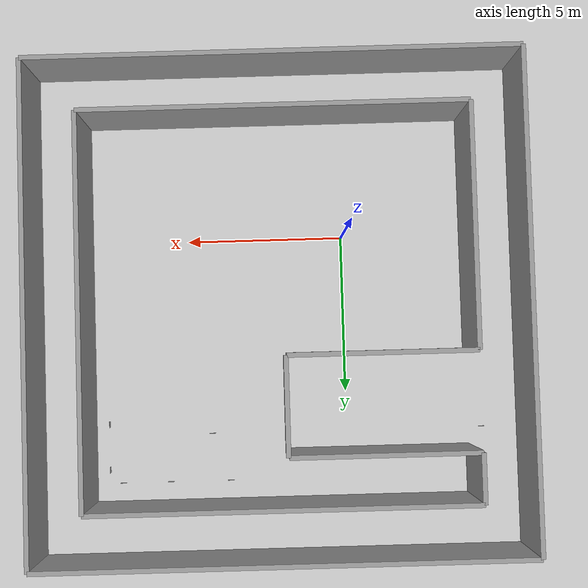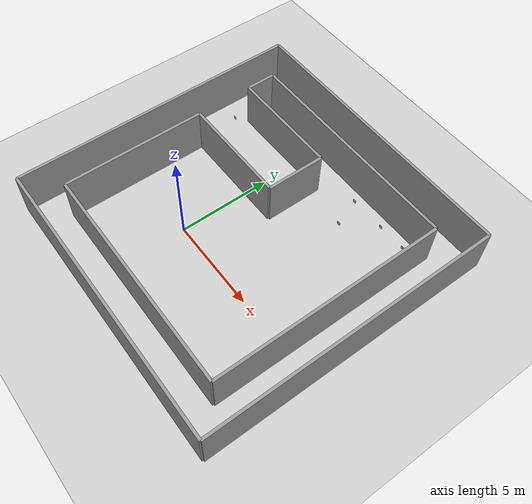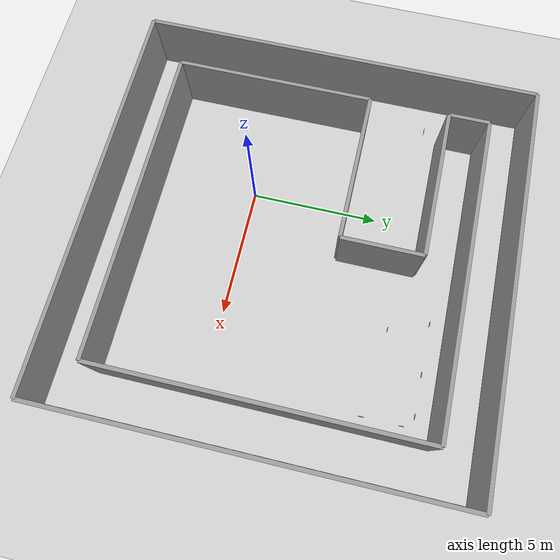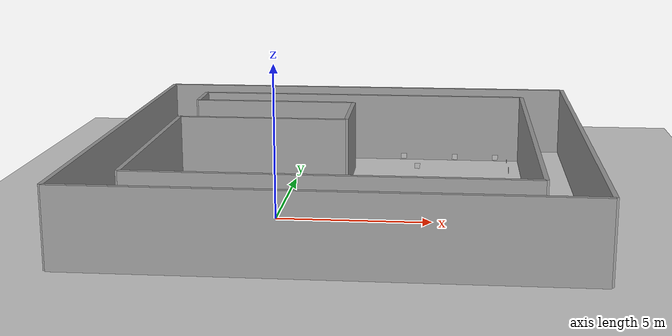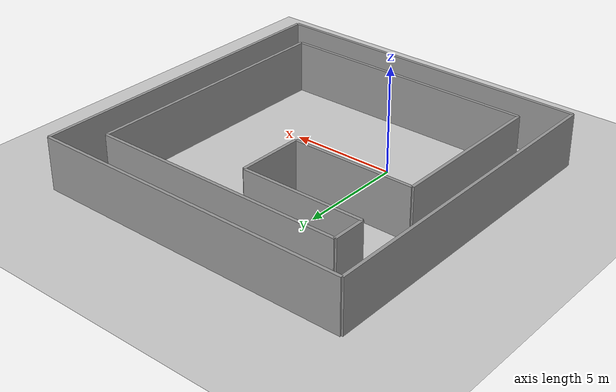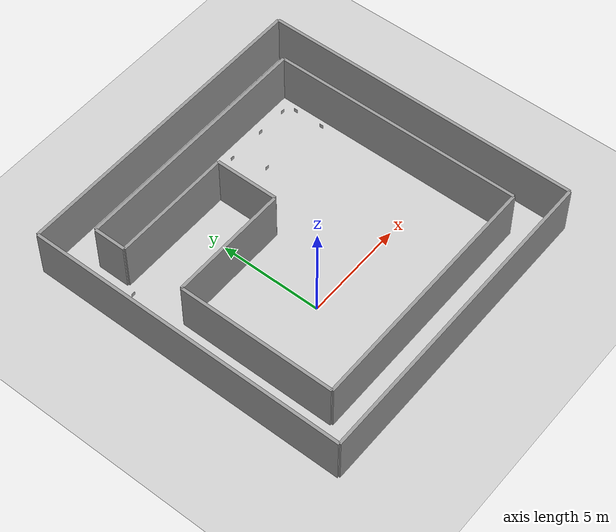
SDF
<sdf version="1.4">
 <world name="testbed">
  <include>
   <uri>model://ground_plane</uri>
   <material>
    <script><uri>file://media/materials/scripts/gazebo.material</uri><name>Gazebo/Orange</name></script>
   </material>
  </include>
  <include><uri>model://sun</uri></include>
  <include><uri>file://testbed/5th_floor</uri></include>
  <include>
   <uri>file://testbed/markers/aruco_marker_1</uri>
   <pose>-4.343 6.245 0.275 0 0 1.57079632679</pose>
  </include>
  <include>
   <uri>file://testbed/markers/aruco_marker_10</uri>
   <pose>3.785 7.765 0.275 0 0 -1.57079632679</pose>
  </include>
  <include>
   <uri>file://testbed/markers/aruco_marker_11</uri>
   <pose>4.342 6.245 0.275 0 0 1.57079632679</pose>
  </include>
  <include>
   <uri>file://testbed/markers/aruco_marker_12</uri>
   <pose>5.7225 7.765 0.275 0 0 -1.57079632679</pose>
  </include>
  <include>
   <uri>file://testbed/markers/aruco_marker_13</uri>
   <pose>7.25 7.765 0.275 0 0 -1.57079632679</pose>
  </include>
  <include>
   <uri>file://testbed/markers/aruco_marker_14</uri>
   <pose>7.675 7.34 0.275 0 0 -3.14159265359</pose>
  </include>
  <include>
   <uri>file://testbed/markers/aruco_marker_15</uri>
   <pose>7.675 5.88 0.275 0 0 -3.14159265359</pose>
  </include>
 </world>
</sdf>

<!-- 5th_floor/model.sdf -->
<sdf version='1.6'>
  <model name='5th_floor'>
    <pose frame=''>2.12813 2.27832 0 0 -0 0</pose>
    <link name='Wall_10'>
      <collision name='Wall_10_Collision'>
        <geometry>
          <box>
            <size>12.16 0.15 2.5</size>
          </box>
        </geometry>
        <pose frame=''>0 0 1.25 0 -0 0</pose>
      </collision>
      <visual name='Wall_10_Visual'>
        <pose frame=''>0 0 1.25 0 -0 0</pose>
        <geometry>
          <box>
            <size>12.16 0.15 2.5</size>
          </box>
        </geometry>
        <material>
          <script>
            <uri>file://media/materials/scripts/gazebo.material</uri>
            <name>Gazebo/Grey</name>
          </script>
          <ambient>1 1 1 1</ambient>
        </material>
      </visual>
      <pose frame=''>0 -6.17 0 0 0 0</pose>
    </link>
    <link name='Wall_11'>
      <collision name='Wall_11_Collision'>
        <geometry>
          <box>
            <size>12.34 0.15 2.5</size>
          </box>
        </geometry>
        <pose frame=''>0 0 1.25 0 -0 0</pose>
      </collision>
      <visual name='Wall_11_Visual'>
        <pose frame=''>0 0 1.25 0 -0 0</pose>
        <geometry>
          <box>
            <size>12.34 0.15 2.5</size>
          </box>
        </geometry>
        <material>
          <script>
            <uri>file://media/materials/scripts/gazebo.material</uri>
            <name>Gazebo/Grey</name>
          </script>
          <ambient>1 1 1 1</ambient>
        </material>
      </visual>
      <pose frame=''>6.08 0 0 0 0 1.57079632679</pose>
    </link>
    <link name='Wall_12'>
      <collision name='Wall_12_Collision'>
        <geometry>
          <box>
            <size>12.16 0.15 2.5</size>
          </box>
        </geometry>
        <pose frame=''>0 0 1.25 0 -0 0</pose>
      </collision>
      <visual name='Wall_12_Visual'>
        <pose frame=''>0 0 1.25 0 -0 0</pose>
        <geometry>
          <box>
            <size>12.16 0.15 2.5</size>
          </box>
        </geometry>
        <material>
          <script>
            <uri>file://media/materials/scripts/gazebo.material</uri>
            <name>Gazebo/Grey</name>
          </script>
          <ambient>1 1 1 1</ambient>
        </material>
      </visual>
      <pose frame=''>0 6.17 0 0 0 -3.14159265359</pose>
    </link>
    <link name='Wall_16'>
      <collision name='Wall_16_Collision'>
        <geometry>
          <box>
            <size>5.86 0.15 2.5</size>
          </box>
        </geometry>
        <pose frame=''>0 0 1.25 0 -0 0</pose>
      </collision>
      <visual name='Wall_16_Visual'>
        <pose frame=''>0 0 1.25 0 -0 0</pose>
        <geometry>
          <box>
            <size>5.86 0.15 2.5</size>
          </box>
        </geometry>
        <material>
          <script>
            <uri>file://media/materials/scripts/gazebo.material</uri>
            <name>Gazebo/Grey</name>
          </script>
          <ambient>1 1 1 1</ambient>
        </material>
      </visual>
      <pose frame=''>-3.15 1.5 0 0 0 -3.14159265359</pose>
    </link>
    <link name='Wall_18'>
      <collision name='Wall_18_Collision'>
        <geometry>
          <box>
            <size>5.86 0.15 2.5</size>
          </box>
        </geometry>
        <pose frame=''>0 0 1.25 0 -0 0</pose>
      </collision>
      <visual name='Wall_18_Visual'>
        <pose frame=''>0 0 1.25 0 -0 0</pose>
        <geometry>
          <box>
            <size>5.86 0.15 2.5</size>
          </box>
        </geometry>
        <material>
          <script>
            <uri>file://media/materials/scripts/gazebo.material</uri>
            <name>Gazebo/Grey</name>
          </script>
          <ambient>1 1 1 1</ambient>
        </material>
      </visual>
      <pose frame=''>-3.15 4.6 0 0 0 0</pose>
    </link>
    <link name='Wall_19'>
      <collision name='Wall_19_Collision'>
        <geometry>
          <box>
            <size>3.1 0.15 2.5</size>
          </box>
        </geometry>
        <pose frame=''>0 0 1.25 0 -0 0</pose>
      </collision>
      <visual name='Wall_19_Visual'>
        <pose frame=''>0 0 1.25 0 -0 0</pose>
        <geometry>
          <box>
            <size>3.1 0.15 2.5</size>
          </box>
        </geometry>
        <material>
          <script>
            <uri>file://media/materials/scripts/gazebo.material</uri>
            <name>Gazebo/Grey</name>
          </script>
          <ambient>1 1 1 1</ambient>
        </material>
      </visual>
      <pose frame=''>-0.2 3.05 0 0 0 -1.5708</pose>
    </link>
    <link name='Wall_21'>
      <collision name='Wall_21_Collision'>
        <geometry>
          <box>
            <size>1.57 0.15 2.5</size>
          </box>
        </geometry>
        <pose frame=''>0 0 1.25 0 -0 0</pose>
      </collision>
      <visual name='Wall_21_Visual'>
        <pose frame=''>0 0 1.25 0 -0 0</pose>
        <geometry>
          <box>
            <size>1.57 0.15 2.5</size>
          </box>
        </geometry>
        <material>
          <script>
            <uri>file://media/materials/scripts/gazebo.material</uri>
            <name>Gazebo/Grey</name>
          </script>
          <ambient>1 1 1 1</ambient>
        </material>
      </visual>
      <pose frame=''>-6.08 5.385 0 0 0 1.57079632679</pose>
    </link>
    <link name='Wall_4'>
      <collision name='Wall_4_Collision'>
        <geometry>
          <box>
            <size>15.68 0.15 2.5</size>
          </box>
        </geometry>
        <pose frame=''>0 0 1.25 0 -0 0</pose>
      </collision>
      <visual name='Wall_4_Visual'>
        <pose frame=''>0 0 1.25 0 -0 0</pose>
        <geometry>
          <box>
            <size>15.68 0.15 2.5</size>
          </box>
        </geometry>
        <material>
          <script>
            <uri>file://media/materials/scripts/gazebo.material</uri>
            <name>Gazebo/Grey</name>
          </script>
          <ambient>1 1 1 1</ambient>
        </material>
      </visual>
      <pose frame=''>-7.75 0 0 0 0 -1.57079632679</pose>
    </link>
    <link name='Wall_5'>
      <collision name='Wall_5_Collision'>
        <geometry>
          <box>
            <size>15.50 0.15 2.5</size>
          </box>
        </geometry>
        <pose frame=''>0 0 1.25 0 -0 0</pose>
      </collision>
      <visual name='Wall_5_Visual'>
        <pose frame=''>0 0 1.25 0 -0 0</pose>
        <geometry>
          <box>
            <size>15.50 0.15 2.5</size>
          </box>
        </geometry>
        <material>
          <script>
            <uri>file://media/materials/scripts/gazebo.material</uri>
            <name>Gazebo/Grey</name>
          </script>
          <ambient>1 1 1 1</ambient>
        </material>
      </visual>
      <pose frame=''>0 -7.84 0 0 0 0</pose>
    </link>
    <link name='Wall_6'>
      <collision name='Wall_6_Collision'>
        <geometry>
          <box>
            <size>15.68 0.15 2.5</size>
          </box>
        </geometry>
        <pose frame=''>0 0 1.25 0 -0 0</pose>
      </collision>
      <visual name='Wall_6_Visual'>
        <pose frame=''>0 0 1.25 0 -0 0</pose>
        <geometry>
          <box>
            <size>15.68 0.15 2.5</size>
          </box>
        </geometry>
        <material>
          <script>
            <uri>file://media/materials/scripts/gazebo.material</uri>
            <name>Gazebo/Grey</name>
          </script>
          <ambient>1 1 1 1</ambient>
        </material>
      </visual>
      <pose frame=''>7.75 0 0 0 0 1.57079632679</pose>
    </link>
    <link name='Wall_7'>
      <collision name='Wall_7_Collision'>
        <geometry>
          <box>
            <size>15.5 0.15 2.5</size>
          </box>
        </geometry>
        <pose frame=''>0 0 1.25 0 -0 0</pose>
      </collision>
      <visual name='Wall_7_Visual'>
        <pose frame=''>0 0 1.25 0 -0 0</pose>
        <geometry>
          <box>
            <size>15.5 0.15 2.5</size>
          </box>
        </geometry>
        <material>
          <script>
            <uri>file://media/materials/scripts/gazebo.material</uri>
            <name>Gazebo/Grey</name>
          </script>
          <ambient>1 1 1 1</ambient>
        </material>
      </visual>
      <pose frame=''>0 7.84 0 0 0 3.14159265359</pose>
    </link>
    <link name='Wall_9'>
      <collision name='Wall_9_Collision'>
        <geometry>
          <box>
            <size>7.67 0.15 2.5</size>
          </box>
        </geometry>
        <pose frame=''>0 0 1.25 0 -0 0</pose>
      </collision>
      <visual name='Wall_9_Visual'>
        <pose frame=''>0 0 1.25 0 -0 0</pose>
        <geometry>
          <box>
            <size>7.67 0.15 2.5</size>
          </box>
        </geometry>
        <material>
          <script>
            <uri>file://media/materials/scripts/gazebo.material</uri>
            <name>Gazebo/Grey</name>
          </script>
          <ambient>1 1 1 1</ambient>
        </material>
      </visual>
      <pose frame=''>-6.08 -2.335 0 0 0 -1.57079632679</pose>
    </link>
    <static>1</static>
  </model>
</sdf>

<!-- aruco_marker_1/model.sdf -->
<sdf version='1.6'>
  <model name='aruco_marker_1'>
    <link name='link_0'>
      <pose frame=''>0 0 0 0 -0 0</pose>
      <inertial>
        <mass>1</mass>
        <inertia>
          <ixx>0.166667</ixx>
          <ixy>0</ixy>
          <ixz>0</ixz>
          <iyy>0.166667</iyy>
          <iyz>0</iyz>
          <izz>0.166667</izz>
        </inertia>
      </inertial>
      <visual name='visual'>
        <pose frame=''>0 0 0 0 -0 0</pose>
        <geometry>
          <mesh>
            <uri>file://testbed/markers/aruco_marker_1/aruco_marker_1.dae</uri>
            <scale>0.1 0.1 0.1</scale>
          </mesh>
        </geometry>
        <material>
          <lighting>1</lighting>
          <script>
            <uri>file://media/materials/scripts/gazebo.material</uri>
            <name>Gazebo/DepthMapVS</name>
          </script>
          <ambient>0.3 0.3 0.3 1</ambient>
          <diffuse>0.7 0.7 0.7 1</diffuse>
          <specular>0.01 0.01 0.01 1</specular>
          <emissive>0 0 0 1</emissive>
        </material>
        <transparency>0</transparency>
        <cast_shadows>1</cast_shadows>
      </visual>
      <collision name='collision'>
        <laser_retro>0</laser_retro>
        <max_contacts>10</max_contacts>
        <pose frame=''>0 0 0 0 -0 0</pose>
        <geometry>
          <mesh>
            <uri>file://testbed/markers/aruco_marker_1/aruco_marker_1.dae</uri>
            <scale>0.1 0.1 0.1</scale>
          </mesh>
        </geometry>
        <surface>
          <friction>
            <ode>
              <mu>1</mu>
              <mu2>1</mu2>
              <fdir1>0 0 0</fdir1>
              <slip1>0</slip1>
              <slip2>0</slip2>
            </ode>
            <torsional>
              <coefficient>1</coefficient>
              <patch_radius>0</patch_radius>
              <surface_radius>0</surface_radius>
              <use_patch_radius>1</use_patch_radius>
              <ode>
                <slip>0</slip>
              </ode>
            </torsional>
          </friction>
          <bounce>
            <restitution_coefficient>0</restitution_coefficient>
            <threshold>1e+06</threshold>
          </bounce>
          <contact>
            <collide_without_contact>0</collide_without_contact>
            <collide_without_contact_bitmask>1</collide_without_contact_bitmask>
            <collide_bitmask>1</collide_bitmask>
            <ode>
              <soft_cfm>0</soft_cfm>
              <soft_erp>0.2</soft_erp>
              <kp>1e+13</kp>
              <kd>1</kd>
              <max_vel>0.01</max_vel>
              <min_depth>0</min_depth>
            </ode>
            <bullet>
              <split_impulse>1</split_impulse>
              <split_impulse_penetration_threshold>-0.01</split_impulse_penetration_threshold>
              <soft_cfm>0</soft_cfm>
              <soft_erp>0.2</soft_erp>
              <kp>1e+13</kp>
              <kd>1</kd>
            </bullet>
          </contact>
        </surface>
      </collision>
    </link>
    <static>1</static>
    <allow_auto_disable>1</allow_auto_disable>
  </model>
</sdf>

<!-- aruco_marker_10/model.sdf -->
<sdf version='1.6'>
  <model name='aruco_marker_10'>
    <link name='link_0'>
      <pose frame=''>0 0 0 0 -0 0</pose>
      <inertial>
        <mass>1</mass>
        <inertia>
          <ixx>0.166667</ixx>
          <ixy>0</ixy>
          <ixz>0</ixz>
          <iyy>0.166667</iyy>
          <iyz>0</iyz>
          <izz>0.166667</izz>
        </inertia>
      </inertial>
      <visual name='visual'>
        <pose frame=''>0 0 0 0 -0 0</pose>
        <geometry>
          <mesh>
            <uri>file://testbed/markers/aruco_marker_10/aruco_marker_10.dae</uri>
            <scale>0.1 0.1 0.1</scale>
          </mesh>
        </geometry>
        <material>
          <lighting>1</lighting>
          <script>
            <uri>file://media/materials/scripts/gazebo.material</uri>
            <name>Gazebo/DepthMapVS</name>
          </script>
          <ambient>0.3 0.3 0.3 1</ambient>
          <diffuse>0.7 0.7 0.7 1</diffuse>
          <specular>0.01 0.01 0.01 1</specular>
          <emissive>0 0 0 1</emissive>
        </material>
        <transparency>0</transparency>
        <cast_shadows>1</cast_shadows>
      </visual>
      <collision name='collision'>
        <laser_retro>0</laser_retro>
        <max_contacts>10</max_contacts>
        <pose frame=''>0 0 0 0 -0 0</pose>
        <geometry>
          <mesh>
            <uri>file://testbed/markers/aruco_marker_10/aruco_marker_10.dae</uri>
            <scale>0.1 0.1 0.1</scale>
          </mesh>
        </geometry>
        <surface>
          <friction>
            <ode>
              <mu>1</mu>
              <mu2>1</mu2>
              <fdir1>0 0 0</fdir1>
              <slip1>0</slip1>
              <slip2>0</slip2>
            </ode>
            <torsional>
              <coefficient>1</coefficient>
              <patch_radius>0</patch_radius>
              <surface_radius>0</surface_radius>
              <use_patch_radius>1</use_patch_radius>
              <ode>
                <slip>0</slip>
              </ode>
            </torsional>
          </friction>
          <bounce>
            <restitution_coefficient>0</restitution_coefficient>
            <threshold>1e+06</threshold>
          </bounce>
          <contact>
            <collide_without_contact>0</collide_without_contact>
            <collide_without_contact_bitmask>1</collide_without_contact_bitmask>
            <collide_bitmask>1</collide_bitmask>
            <ode>
              <soft_cfm>0</soft_cfm>
              <soft_erp>0.2</soft_erp>
              <kp>1e+13</kp>
              <kd>1</kd>
              <max_vel>0.01</max_vel>
              <min_depth>0</min_depth>
            </ode>
            <bullet>
              <split_impulse>1</split_impulse>
              <split_impulse_penetration_threshold>-0.01</split_impulse_penetration_threshold>
              <soft_cfm>0</soft_cfm>
              <soft_erp>0.2</soft_erp>
              <kp>1e+13</kp>
              <kd>1</kd>
            </bullet>
          </contact>
        </surface>
      </collision>
    </link>
    <static>1</static>
    <allow_auto_disable>1</allow_auto_disable>
  </model>
</sdf>

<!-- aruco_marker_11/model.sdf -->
<sdf version='1.6'>
  <model name='aruco_marker_11'>
    <link name='link_0'>
      <pose frame=''>0 0 0 0 -0 0</pose>
      <inertial>
        <mass>1</mass>
        <inertia>
          <ixx>0.166667</ixx>
          <ixy>0</ixy>
          <ixz>0</ixz>
          <iyy>0.166667</iyy>
          <iyz>0</iyz>
          <izz>0.166667</izz>
        </inertia>
      </inertial>
      <visual name='visual'>
        <pose frame=''>0 0 0 0 -0 0</pose>
        <geometry>
          <mesh>
            <uri>file://testbed/markers/aruco_marker_11/aruco_marker_11.dae</uri>
            <scale>0.1 0.1 0.1</scale>
          </mesh>
        </geometry>
        <material>
          <lighting>1</lighting>
          <script>
            <uri>file://media/materials/scripts/gazebo.material</uri>
            <name>Gazebo/DepthMapVS</name>
          </script>
          <ambient>0.3 0.3 0.3 1</ambient>
          <diffuse>0.7 0.7 0.7 1</diffuse>
          <specular>0.01 0.01 0.01 1</specular>
          <emissive>0 0 0 1</emissive>
        </material>
        <transparency>0</transparency>
        <cast_shadows>1</cast_shadows>
      </visual>
      <collision name='collision'>
        <laser_retro>0</laser_retro>
        <max_contacts>10</max_contacts>
        <pose frame=''>0 0 0 0 -0 0</pose>
        <geometry>
          <mesh>
            <uri>file://testbed/markers/aruco_marker_11/aruco_marker_11.dae</uri>
            <scale>0.1 0.1 0.1</scale>
          </mesh>
        </geometry>
        <surface>
          <friction>
            <ode>
              <mu>1</mu>
              <mu2>1</mu2>
              <fdir1>0 0 0</fdir1>
              <slip1>0</slip1>
              <slip2>0</slip2>
            </ode>
            <torsional>
              <coefficient>1</coefficient>
              <patch_radius>0</patch_radius>
              <surface_radius>0</surface_radius>
              <use_patch_radius>1</use_patch_radius>
              <ode>
                <slip>0</slip>
              </ode>
            </torsional>
          </friction>
          <bounce>
            <restitution_coefficient>0</restitution_coefficient>
            <threshold>1e+06</threshold>
          </bounce>
          <contact>
            <collide_without_contact>0</collide_without_contact>
            <collide_without_contact_bitmask>1</collide_without_contact_bitmask>
            <collide_bitmask>1</collide_bitmask>
            <ode>
              <soft_cfm>0</soft_cfm>
              <soft_erp>0.2</soft_erp>
              <kp>1e+13</kp>
              <kd>1</kd>
              <max_vel>0.01</max_vel>
              <min_depth>0</min_depth>
            </ode>
            <bullet>
              <split_impulse>1</split_impulse>
              <split_impulse_penetration_threshold>-0.01</split_impulse_penetration_threshold>
              <soft_cfm>0</soft_cfm>
              <soft_erp>0.2</soft_erp>
              <kp>1e+13</kp>
              <kd>1</kd>
            </bullet>
          </contact>
        </surface>
      </collision>
    </link>
    <static>1</static>
    <allow_auto_disable>1</allow_auto_disable>
  </model>
</sdf>

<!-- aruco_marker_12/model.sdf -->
<sdf version='1.6'>
  <model name='aruco_marker_12'>
    <link name='link_0'>
      <pose frame=''>0 0 0 0 -0 0</pose>
      <inertial>
        <mass>1</mass>
        <inertia>
          <ixx>0.166667</ixx>
          <ixy>0</ixy>
          <ixz>0</ixz>
          <iyy>0.166667</iyy>
          <iyz>0</iyz>
          <izz>0.166667</izz>
        </inertia>
      </inertial>
      <visual name='visual'>
        <pose frame=''>0 0 0 0 -0 0</pose>
        <geometry>
          <mesh>
            <uri>file://testbed/markers/aruco_marker_12/aruco_marker_12.dae</uri>
            <scale>0.1 0.1 0.1</scale>
          </mesh>
        </geometry>
        <material>
          <lighting>1</lighting>
          <script>
            <uri>file://media/materials/scripts/gazebo.material</uri>
            <name>Gazebo/DepthMapVS</name>
          </script>
          <ambient>0.3 0.3 0.3 1</ambient>
          <diffuse>0.7 0.7 0.7 1</diffuse>
          <specular>0.01 0.01 0.01 1</specular>
          <emissive>0 0 0 1</emissive>
        </material>
        <transparency>0</transparency>
        <cast_shadows>1</cast_shadows>
      </visual>
      <collision name='collision'>
        <laser_retro>0</laser_retro>
        <max_contacts>10</max_contacts>
        <pose frame=''>0 0 0 0 -0 0</pose>
        <geometry>
          <mesh>
            <uri>file://testbed/markers/aruco_marker_12/aruco_marker_12.dae</uri>
            <scale>0.1 0.1 0.1</scale>
          </mesh>
        </geometry>
        <surface>
          <friction>
            <ode>
              <mu>1</mu>
              <mu2>1</mu2>
              <fdir1>0 0 0</fdir1>
              <slip1>0</slip1>
              <slip2>0</slip2>
            </ode>
            <torsional>
              <coefficient>1</coefficient>
              <patch_radius>0</patch_radius>
              <surface_radius>0</surface_radius>
              <use_patch_radius>1</use_patch_radius>
              <ode>
                <slip>0</slip>
              </ode>
            </torsional>
          </friction>
          <bounce>
            <restitution_coefficient>0</restitution_coefficient>
            <threshold>1e+06</threshold>
          </bounce>
          <contact>
            <collide_without_contact>0</collide_without_contact>
            <collide_without_contact_bitmask>1</collide_without_contact_bitmask>
            <collide_bitmask>1</collide_bitmask>
            <ode>
              <soft_cfm>0</soft_cfm>
              <soft_erp>0.2</soft_erp>
              <kp>1e+13</kp>
              <kd>1</kd>
              <max_vel>0.01</max_vel>
              <min_depth>0</min_depth>
            </ode>
            <bullet>
              <split_impulse>1</split_impulse>
              <split_impulse_penetration_threshold>-0.01</split_impulse_penetration_threshold>
              <soft_cfm>0</soft_cfm>
              <soft_erp>0.2</soft_erp>
              <kp>1e+13</kp>
              <kd>1</kd>
            </bullet>
          </contact>
        </surface>
      </collision>
    </link>
    <static>1</static>
    <allow_auto_disable>1</allow_auto_disable>
  </model>
</sdf>

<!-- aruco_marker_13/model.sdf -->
<sdf version='1.6'>
  <model name='aruco_marker_13'>
    <link name='link_0'>
      <pose frame=''>0 0 0 0 -0 0</pose>
      <inertial>
        <mass>1</mass>
        <inertia>
          <ixx>0.166667</ixx>
          <ixy>0</ixy>
          <ixz>0</ixz>
          <iyy>0.166667</iyy>
          <iyz>0</iyz>
          <izz>0.166667</izz>
        </inertia>
      </inertial>
      <visual name='visual'>
        <pose frame=''>0 0 0 0 -0 0</pose>
        <geometry>
          <mesh>
            <uri>file://testbed/markers/aruco_marker_13/aruco_marker_13.dae</uri>
            <scale>0.1 0.1 0.1</scale>
          </mesh>
        </geometry>
        <material>
          <lighting>1</lighting>
          <script>
            <uri>file://media/materials/scripts/gazebo.material</uri>
            <name>Gazebo/DepthMapVS</name>
          </script>
          <ambient>0.3 0.3 0.3 1</ambient>
          <diffuse>0.7 0.7 0.7 1</diffuse>
          <specular>0.01 0.01 0.01 1</specular>
          <emissive>0 0 0 1</emissive>
        </material>
        <transparency>0</transparency>
        <cast_shadows>1</cast_shadows>
      </visual>
      <collision name='collision'>
        <laser_retro>0</laser_retro>
        <max_contacts>10</max_contacts>
        <pose frame=''>0 0 0 0 -0 0</pose>
        <geometry>
          <mesh>
            <uri>file://testbed/markers/aruco_marker_13/aruco_marker_13.dae</uri>
            <scale>0.1 0.1 0.1</scale>
          </mesh>
        </geometry>
        <surface>
          <friction>
            <ode>
              <mu>1</mu>
              <mu2>1</mu2>
              <fdir1>0 0 0</fdir1>
              <slip1>0</slip1>
              <slip2>0</slip2>
            </ode>
            <torsional>
              <coefficient>1</coefficient>
              <patch_radius>0</patch_radius>
              <surface_radius>0</surface_radius>
              <use_patch_radius>1</use_patch_radius>
              <ode>
                <slip>0</slip>
              </ode>
            </torsional>
          </friction>
          <bounce>
            <restitution_coefficient>0</restitution_coefficient>
            <threshold>1e+06</threshold>
          </bounce>
          <contact>
            <collide_without_contact>0</collide_without_contact>
            <collide_without_contact_bitmask>1</collide_without_contact_bitmask>
            <collide_bitmask>1</collide_bitmask>
            <ode>
              <soft_cfm>0</soft_cfm>
              <soft_erp>0.2</soft_erp>
              <kp>1e+13</kp>
              <kd>1</kd>
              <max_vel>0.01</max_vel>
              <min_depth>0</min_depth>
            </ode>
            <bullet>
              <split_impulse>1</split_impulse>
              <split_impulse_penetration_threshold>-0.01</split_impulse_penetration_threshold>
              <soft_cfm>0</soft_cfm>
              <soft_erp>0.2</soft_erp>
              <kp>1e+13</kp>
              <kd>1</kd>
            </bullet>
          </contact>
        </surface>
      </collision>
    </link>
    <static>1</static>
    <allow_auto_disable>1</allow_auto_disable>
  </model>
</sdf>

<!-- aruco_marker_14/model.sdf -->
<sdf version='1.6'>
  <model name='aruco_marker_14'>
    <link name='link_0'>
      <pose frame=''>0 0 0 0 -0 0</pose>
      <inertial>
        <mass>1</mass>
        <inertia>
          <ixx>0.166667</ixx>
          <ixy>0</ixy>
          <ixz>0</ixz>
          <iyy>0.166667</iyy>
          <iyz>0</iyz>
          <izz>0.166667</izz>
        </inertia>
      </inertial>
      <visual name='visual'>
        <pose frame=''>0 0 0 0 -0 0</pose>
        <geometry>
          <mesh>
            <uri>file://testbed/markers/aruco_marker_14/aruco_marker_14.dae</uri>
            <scale>0.1 0.1 0.1</scale>
          </mesh>
        </geometry>
        <material>
          <lighting>1</lighting>
          <script>
            <uri>file://media/materials/scripts/gazebo.material</uri>
            <name>Gazebo/DepthMapVS</name>
          </script>
          <ambient>0.3 0.3 0.3 1</ambient>
          <diffuse>0.7 0.7 0.7 1</diffuse>
          <specular>0.01 0.01 0.01 1</specular>
          <emissive>0 0 0 1</emissive>
        </material>
        <transparency>0</transparency>
        <cast_shadows>1</cast_shadows>
      </visual>
      <collision name='collision'>
        <laser_retro>0</laser_retro>
        <max_contacts>10</max_contacts>
        <pose frame=''>0 0 0 0 -0 0</pose>
        <geometry>
          <mesh>
            <uri>file://testbed/markers/aruco_marker_14/aruco_marker_14.dae</uri>
            <scale>0.1 0.1 0.1</scale>
          </mesh>
        </geometry>
        <surface>
          <friction>
            <ode>
              <mu>1</mu>
              <mu2>1</mu2>
              <fdir1>0 0 0</fdir1>
              <slip1>0</slip1>
              <slip2>0</slip2>
            </ode>
            <torsional>
              <coefficient>1</coefficient>
              <patch_radius>0</patch_radius>
              <surface_radius>0</surface_radius>
              <use_patch_radius>1</use_patch_radius>
              <ode>
                <slip>0</slip>
              </ode>
            </torsional>
          </friction>
          <bounce>
            <restitution_coefficient>0</restitution_coefficient>
            <threshold>1e+06</threshold>
          </bounce>
          <contact>
            <collide_without_contact>0</collide_without_contact>
            <collide_without_contact_bitmask>1</collide_without_contact_bitmask>
            <collide_bitmask>1</collide_bitmask>
            <ode>
              <soft_cfm>0</soft_cfm>
              <soft_erp>0.2</soft_erp>
              <kp>1e+13</kp>
              <kd>1</kd>
              <max_vel>0.01</max_vel>
              <min_depth>0</min_depth>
            </ode>
            <bullet>
              <split_impulse>1</split_impulse>
              <split_impulse_penetration_threshold>-0.01</split_impulse_penetration_threshold>
              <soft_cfm>0</soft_cfm>
              <soft_erp>0.2</soft_erp>
              <kp>1e+13</kp>
              <kd>1</kd>
            </bullet>
          </contact>
        </surface>
      </collision>
    </link>
    <static>1</static>
    <allow_auto_disable>1</allow_auto_disable>
  </model>
</sdf>

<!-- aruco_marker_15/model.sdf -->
<sdf version='1.6'>
  <model name='aruco_marker_15'>
    <link name='link_0'>
      <pose frame=''>0 0 0 0 -0 0</pose>
      <inertial>
        <mass>1</mass>
        <inertia>
          <ixx>0.166667</ixx>
          <ixy>0</ixy>
          <ixz>0</ixz>
          <iyy>0.166667</iyy>
          <iyz>0</iyz>
          <izz>0.166667</izz>
        </inertia>
      </inertial>
      <visual name='visual'>
        <pose frame=''>0 0 0 0 -0 0</pose>
        <geometry>
          <mesh>
            <uri>file://testbed/markers/aruco_marker_15/aruco_marker_15.dae</uri>
            <scale>0.1 0.1 0.1</scale>
          </mesh>
        </geometry>
        <material>
          <lighting>1</lighting>
          <script>
            <uri>file://media/materials/scripts/gazebo.material</uri>
            <name>Gazebo/DepthMapVS</name>
          </script>
          <ambient>0.3 0.3 0.3 1</ambient>
          <diffuse>0.7 0.7 0.7 1</diffuse>
          <specular>0.01 0.01 0.01 1</specular>
          <emissive>0 0 0 1</emissive>
        </material>
        <transparency>0</transparency>
        <cast_shadows>1</cast_shadows>
      </visual>
      <collision name='collision'>
        <laser_retro>0</laser_retro>
        <max_contacts>10</max_contacts>
        <pose frame=''>0 0 0 0 -0 0</pose>
        <geometry>
          <mesh>
            <uri>file://testbed/markers/aruco_marker_15/aruco_marker_15.dae</uri>
            <scale>0.1 0.1 0.1</scale>
          </mesh>
        </geometry>
        <surface>
          <friction>
            <ode>
              <mu>1</mu>
              <mu2>1</mu2>
              <fdir1>0 0 0</fdir1>
              <slip1>0</slip1>
              <slip2>0</slip2>
            </ode>
            <torsional>
              <coefficient>1</coefficient>
              <patch_radius>0</patch_radius>
              <surface_radius>0</surface_radius>
              <use_patch_radius>1</use_patch_radius>
              <ode>
                <slip>0</slip>
              </ode>
            </torsional>
          </friction>
          <bounce>
            <restitution_coefficient>0</restitution_coefficient>
            <threshold>1e+06</threshold>
          </bounce>
          <contact>
            <collide_without_contact>0</collide_without_contact>
            <collide_without_contact_bitmask>1</collide_without_contact_bitmask>
            <collide_bitmask>1</collide_bitmask>
            <ode>
              <soft_cfm>0</soft_cfm>
              <soft_erp>0.2</soft_erp>
              <kp>1e+13</kp>
              <kd>1</kd>
              <max_vel>0.01</max_vel>
              <min_depth>0</min_depth>
            </ode>
            <bullet>
              <split_impulse>1</split_impulse>
              <split_impulse_penetration_threshold>-0.01</split_impulse_penetration_threshold>
              <soft_cfm>0</soft_cfm>
              <soft_erp>0.2</soft_erp>
              <kp>1e+13</kp>
              <kd>1</kd>
            </bullet>
          </contact>
        </surface>
      </collision>
    </link>
    <static>1</static>
    <allow_auto_disable>1</allow_auto_disable>
  </model>
</sdf>
